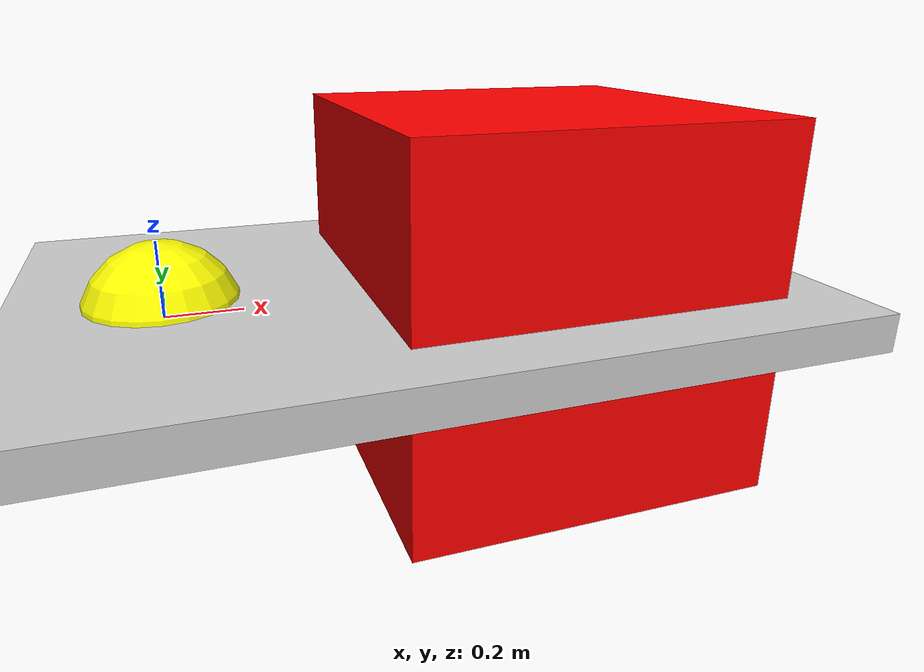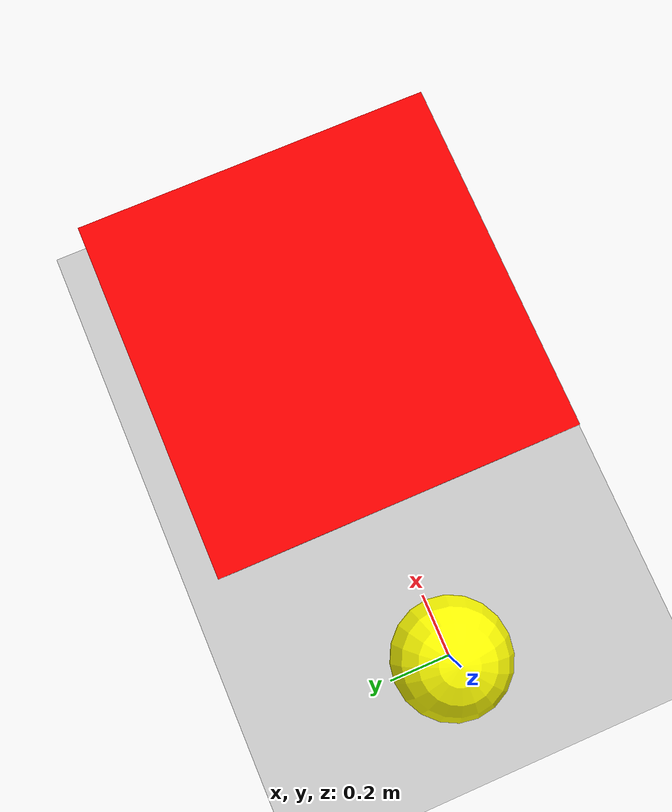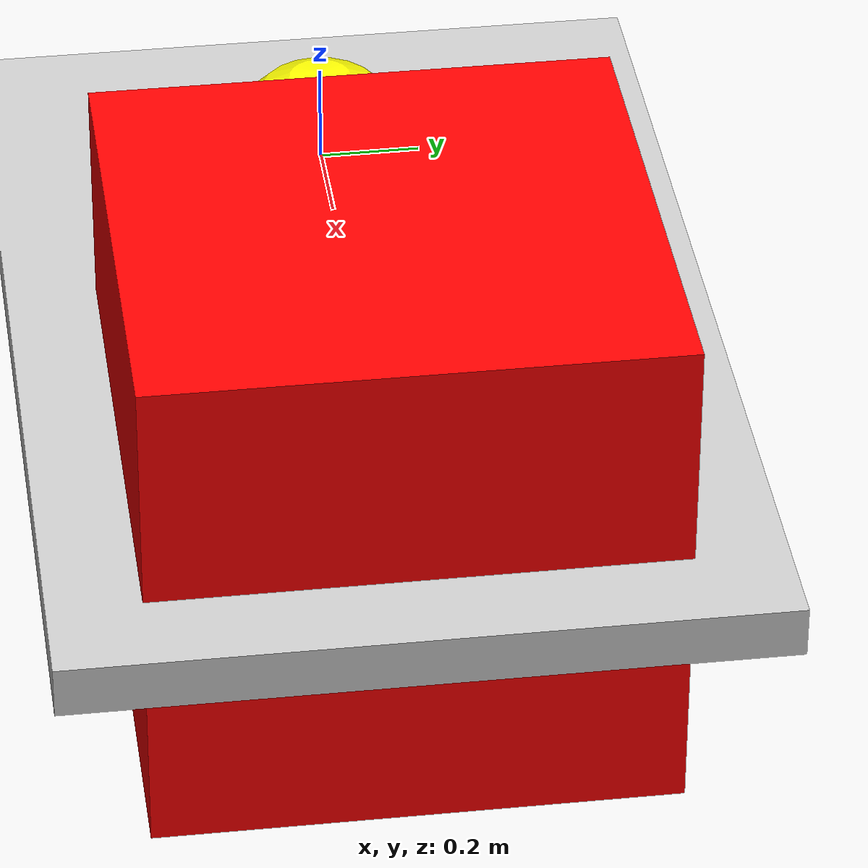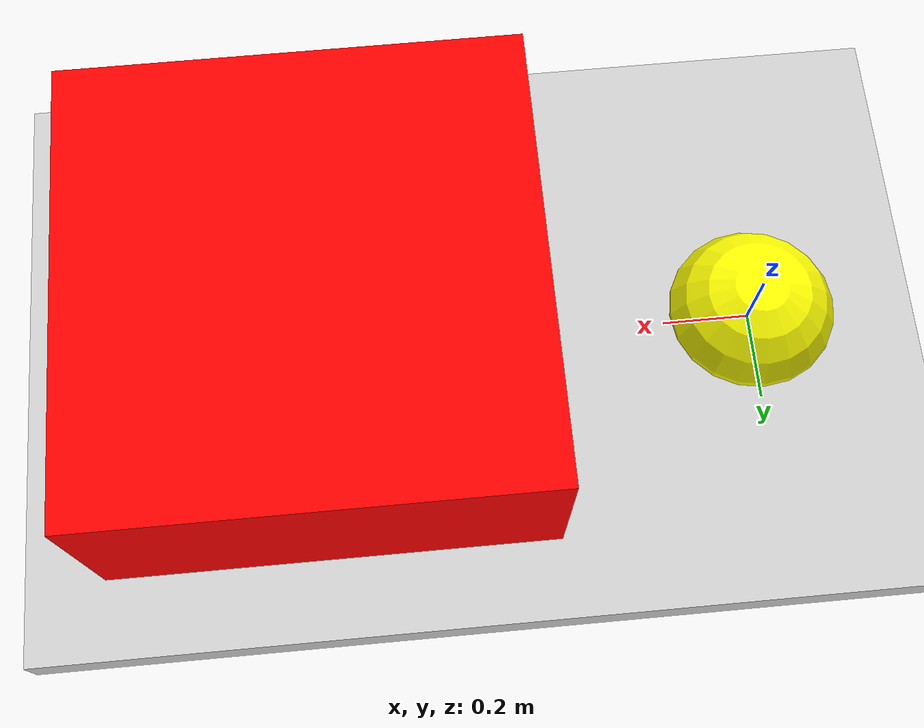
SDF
<?xml version="1.0"?>
<sdf version="1.6">
    <world name="test">
        <plugin
            filename="libignition-gazebo-scene-broadcaster-system.so"
            name="ignition::gazebo::systems::SceneBroadcaster" />

        <gui fullscreen="0">

            <!-- 3D scene -->
            <plugin filename="GzScene3D" name="3D View">
                <ignition-gui>
                <title>3D View</title>
                <property type="bool" key="showTitleBar">false</property>
                <property type="string" key="state">docked</property>
                </ignition-gui>

                <engine>ogre2</engine>
                <scene>scene</scene>
                <ambient_light>0.4 0.4 0.4</ambient_light>
                <background_color>0.8 0.8 0.8</background_color>
                <camera_pose>-6 0 6 0 0.5 0</camera_pose>
            </plugin>

            <!-- World control -->
            <plugin filename="WorldControl" name="World control">
                <ignition-gui>
                <title>World control</title>
                <property type="bool" key="showTitleBar">false</property>
                <property type="bool" key="resizable">false</property>
                <property type="double" key="height">72</property>
                <property type="double" key="width">121</property>
                <property type="double" key="z">1</property>

                <property type="string" key="state">floating</property>
                <anchors target="3D View">
                    <line own="left" target="left"/>
                    <line own="bottom" target="bottom"/>
                </anchors>
                </ignition-gui>

                <play_pause>true</play_pause>
                <step>true</step>
                <start_paused>true</start_paused>
            </plugin>

            <!-- World statistics -->
            <plugin filename="WorldStats" name="World stats">
                <ignition-gui>
                <title>World stats</title>
                <property type="bool" key="showTitleBar">false</property>
                <property type="bool" key="resizable">false</property>
                <property type="double" key="height">110</property>
                <property type="double" key="width">290</property>
                <property type="double" key="z">1</property>

                <property type="string" key="state">floating</property>
                <anchors target="3D View">
                    <line own="right" target="right"/>
                    <line own="bottom" target="bottom"/>
                </anchors>
                </ignition-gui>

                <sim_time>true</sim_time>
                <real_time>true</real_time>
                <real_time_factor>true</real_time_factor>
                <iterations>true</iterations>
            </plugin>
        </gui>

        <light type="directional" name="sun">
            <cast_shadows>true</cast_shadows>
            <pose>0 0 10 0 0 0</pose>
            <diffuse>0.8 0.8 0.8 1</diffuse>
            <specular>0.2 0.2 0.2 1</specular>
            <attenuation>
                <range>1000</range>
                <constant>0.9</constant>
                <linear>0.01</linear>
                <quadratic>0.001</quadratic>
            </attenuation>
            <direction>-0.5 0.1 -0.9</direction>
        </light>

        <model name="ground_plane">
            <static>true</static>
            <link name="link">
                <collision name="collision">
                <geometry>
                    <box>
                    <size>20 20 0.1</size>
                    </box>
                </geometry>
                </collision>
                <visual name="visual">
                <geometry>
                    <box>
                    <size>20 20 0.1</size>
                    </box>
                </geometry>
                <material>
                    <ambient>0.8 0.8 0.8 1</ambient>
                    <diffuse>0.8 0.8 0.8 1</diffuse>
                    <specular>0.8 0.8 0.8 1</specular>
                </material>
                </visual>
            </link>
            </model>

            <model name="box">
            <pose>1 0 0 0 0 0</pose>
            <link name="link">
                <inertial>
                <inertia>
                    <ixx>1</ixx>
                    <ixy>0</ixy>
                    <ixz>0</ixz>
                    <iyy>1</iyy>
                    <iyz>0</iyz>
                    <izz>1</izz>
                </inertia>
                <mass>1.0</mass>
                </inertial>
                <collision name="collision">
                <geometry>
                    <box>
                    <size>1 1 1</size>
                    </box>
                </geometry>
                </collision>

                <visual name="visual">
                <geometry>
                    <box>
                    <size>1 1 1</size>
                    </box>
                </geometry>
                <material>
                    <ambient>1 0 0 1</ambient>
                    <diffuse>1 0 0 1</diffuse>
                    <specular>1 0 0 1</specular>
                </material>
                </visual>
            </link>

            <plugin filename="IgnKinematicsSystem" name="ign_kinematics_system::IgnKinematicsSystem" />
        </model>

        <model name="sphere">
            <pose>0 0 0 0 0 0</pose>
            <link name="link">
                <inertial>
                <inertia>
                    <ixx>1</ixx>
                    <ixy>0</ixy>
                    <ixz>0</ixz>
                    <iyy>1</iyy>
                    <iyz>0</iyz>
                    <izz>1</izz>
                </inertia>
                <mass>1.0</mass>
                </inertial>
                <collision name="collision">
                <geometry>
                    <sphere>
                    <radius>0.2</radius>
                    </sphere>
                </geometry>
                </collision>

                <visual name="visual">
                <geometry>
                    <sphere>
                    <radius>0.2</radius>
                    </sphere>
                </geometry>
                <material>
                    <ambient>1 1 0 1</ambient>
                    <diffuse>1 1 0 1</diffuse>
                    <specular>1 1 0 1</specular>
                </material>
                </visual>
            </link>
        </model>

    </world>
</sdf>
